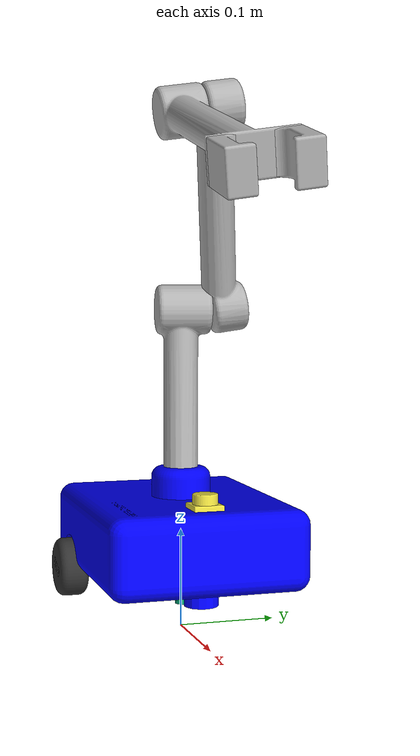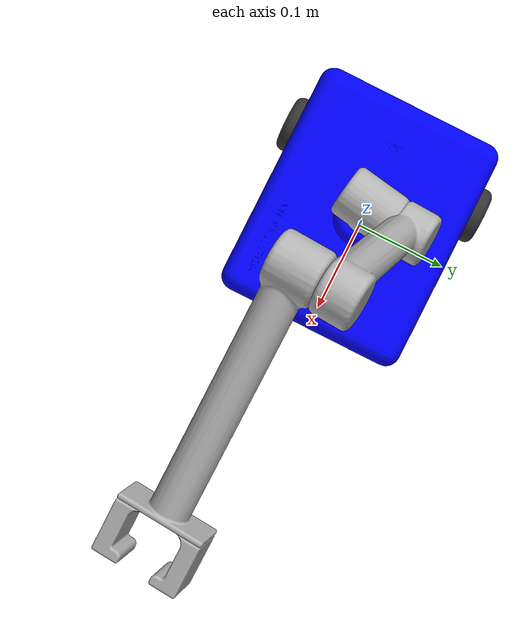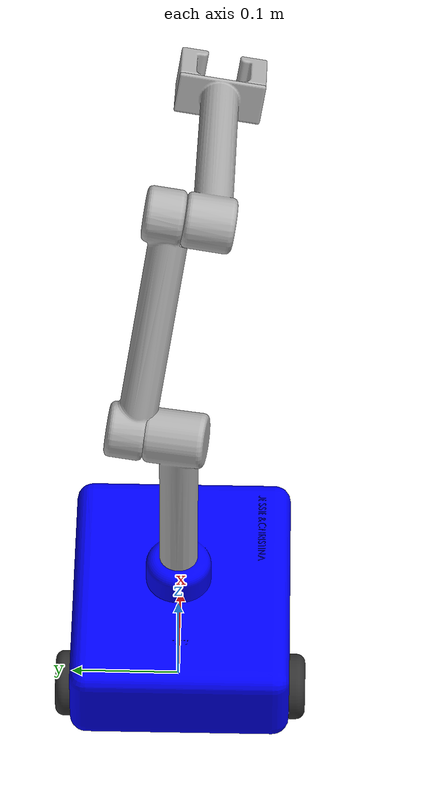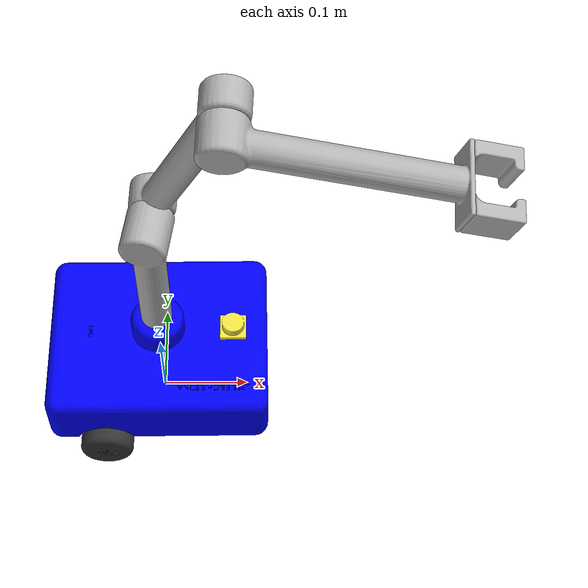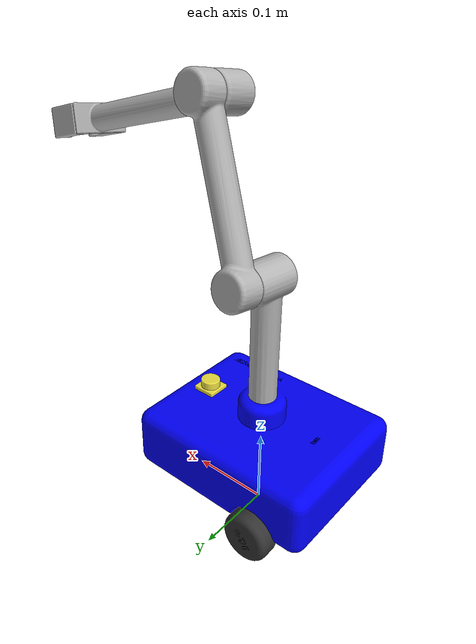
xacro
<?xml version="1.0"?>
<robot xmlns:xacro="http://www.ros.org/wiki/xacro" name="car_model">
    <xacro:arg name="initial_positions_file" default="initial_positions.yaml" />

    <!-- Import car_model urdf file -->
    <xacro:include filename="$(find car_model)/urdf/car_model.xacro" />

    <!-- Import control_xacro -->
    <xacro:include filename="car_model.ros2_control.xacro" />

    <xacro:car_model_ros2_control name="FakeSystem" initial_positions_file="$(arg initial_positions_file)"/>

</robot>

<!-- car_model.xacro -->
<robot xmlns:xacro="http://www.ros.org/wiki/xacro" name="car_model">
  <xacro:property name="pkg_name" value="car_model"/>
  <xacro:property name="path_prefix" value="file:///home/jessie/project_ws/src/${pkg_name}"/>
  <xacro:property name="shoulder_tilt" value="1.2"/>
  <xacro:property name="elbow_tilt" value="0"/>

  <!-- 惯性宏 -->
  <xacro:macro name="box_inertial" params="mass x y z">
    <inertial>
      <mass value="${mass}" />
      <inertia ixx="0.001" ixy="0.0" ixz="0.0" iyy="0.001" iyz="0.0" izz="0.001" />
    </inertial>
  </xacro:macro>

  <!-- 基础底座 -->
  <link name="base_footprint"/>
  <joint name="base_joint" type="fixed">
    <parent link="base_footprint"/>
    <child link="base_link"/>
    <origin xyz="0 0 0.135" rpy="0 0 3.14159"/>
  </joint>

  <link name="base_link">
    <inertial>
      <origin xyz="0 0 -0.05" rpy="0 0 0" />
      <mass value="100.0" />
      <inertia ixx="0.1" ixy="0.0" ixz="0.0" iyy="0.1" iyz="0.0" izz="0.01" />
    </inertial>
    <visual>
      <origin xyz="0 0 0" rpy="0 0 0" />
      <geometry><mesh filename="${path_prefix}/meshes/base_link.STL" /></geometry>
      <material name=""><color rgba="0 0 1 1" /></material>
    </visual>
    <collision>
      <origin xyz="0 0 0.05" rpy="0 0 0" />
      <geometry><box size="0.25 0.2 0.1" /></geometry>
    </collision>
    <!-- 支撑轮摩擦力设为0 -->
    <collision name="left_front_caster">
      <origin xyz="0.18 0.12 -0.08" rpy="0 0 0" />
      <geometry><sphere radius="0.038" /></geometry>
      <surface><friction><ode><mu>0.0</mu><mu2>0.0</mu2></ode></friction></surface>
    </collision>
    <collision name="right_front_caster">
      <origin xyz="0.18 -0.12 -0.08" rpy="0 0 0" />
      <geometry><sphere radius="0.038" /></geometry>
      <surface><friction><ode><mu>0.0</mu><mu2>0.0</mu2></ode></friction></surface>
    </collision>
    <collision name="left_rear_caster">
      <origin xyz="-0.18 0.12 -0.08" rpy="0 0 0" />
      <geometry><sphere radius="0.04" /></geometry>
      <surface><friction><ode><mu>0.0</mu><mu2>0.0</mu2></ode></friction></surface>
    </collision>
    <collision name="right_rear_caster">
      <origin xyz="-0.18 -0.12 -0.08" rpy="0 0 0" />
      <geometry><sphere radius="0.04" /></geometry>
      <surface><friction><ode><mu>0.0</mu><mu2>0.0</mu2></ode></friction></surface>
    </collision>
  </link>

  <!-- 机械臂关节 1 -->
  <link name="link1">
    <xacro:box_inertial mass="0.01" x="0.05" y="0.05" z="0.05" />
    <visual><geometry><mesh filename="${path_prefix}/meshes/link1.STL" /></geometry><material name=""><color rgba="0.7 0.7 0.7 1" /></material></visual>
    <collision><geometry><mesh filename="${path_prefix}/meshes/link1.STL" /></geometry></collision>
  </link>
  <joint name="joint1" type="revolute">
    <origin xyz="0 0 0.03" rpy="0 0 0" />
    <parent link="base_link" />
    <child link="link1" />
    <axis xyz="0 0 -1" />
    <limit lower="-3.14" upper="3.14" effort="10.0" velocity="1.0" />
    <dynamics damping="1.0" friction="1.0"/>
  </joint>

  <!-- 机械臂关节 2 -->
  <link name="link2">
    <xacro:box_inertial mass="0.01" x="0.05" y="0.05" z="0.05" />
    <visual><geometry><mesh filename="${path_prefix}/meshes/link2.STL" /></geometry><material name=""><color rgba="0.7 0.7 0.7 1" /></material></visual>
    <collision><geometry><mesh filename="${path_prefix}/meshes/link2.STL" /></geometry></collision>
  </link>
  <joint name="joint2" type="revolute">
    <origin xyz="-0.0046 -0.0296 0.16" rpy="1.5708 ${shoulder_tilt} 0" />
    <parent link="link1" />
    <child link="link2" />
    <axis xyz="0.1537 0 -0.9881" />
    <limit lower="-3.14" upper="3.14" effort="10.0" velocity="1.0" />
    <dynamics damping="1.0" friction="1.0"/>
  </joint>

  <!-- 机械臂关节 3 -->
  <link name="link3">
    <xacro:box_inertial mass="0.01" x="0.05" y="0.05" z="0.05" />
    <visual><geometry><mesh filename="${path_prefix}/meshes/link3.STL" /></geometry><material name=""><color rgba="0.7 0.7 0.7 1" /></material></visual>
    <collision><geometry><mesh filename="${path_prefix}/meshes/link3.STL" /></geometry></collision>
  </link>
  <joint name="joint3" type="revolute">
    <origin xyz="-0.2074 -0.0052 -0.0322" rpy="0 ${elbow_tilt} 0" />
    <parent link="link2" />
    <child link="link3" />
    <axis xyz="-0.1537 0 0.9881" />
    <limit lower="-3.14" upper="3.14" effort="10.0" velocity="1.0" />
    <dynamics damping="1.0" friction="1.0"/>
  </joint>

  <!-- 吸盘物理连接点 grasp_link -->
  <link name="grasp_link">
    <inertial>
      <mass value="0.05" />
      <inertia ixx="0.0001" ixy="0" ixz="0" iyy="0.0001" iyz="0" izz="0.0001" />
    </inertial>
    <collision><geometry><sphere radius="0.0001"/></geometry></collision>
  </link>

  <joint name="grasp_joint" type="fixed">
    <parent link="link3" />
    <child link="grasp_link" />
    <origin xyz="-0.02 -0.25 -0.03" rpy="0 0 0" />
  </joint>

  <!-- 防止 grasp_link 在 Gazebo 中被优化掉（关键修复） -->
  <gazebo reference="grasp_joint">
    <disableFixedJointLumping>true</disableFixedJointLumping>
  </gazebo>

  <!-- 夹爪 paw1 -->
  <link name="paw1">
    <xacro:box_inertial mass="0.01" x="0.05" y="0.05" z="0.05" />
    <visual><geometry><mesh filename="${path_prefix}/meshes/paw1.STL" /></geometry><material name=""><color rgba="0.7 0.7 0.7 1" /></material></visual>
    <collision>
      <origin xyz="0 0 0" rpy="0 0 0"/>
      <geometry><box size="0.18 0.15 0.057"/></geometry>
      <surface>
        <friction><ode><mu>100.0</mu><mu2>100.0</mu2></ode></friction>
        <contact><ode><kp>1000000.0</kp><kd>1.0</kd><min_depth>0.001</min_depth></ode></contact>
      </surface>
    </collision>
  </link>
  <joint name="paw1_joint" type="prismatic">
    <origin xyz="-0.0147 -0.2336 -0.0680" rpy="0 0 0" />
    <parent link="link3" />
    <child link="paw1" />
    <axis xyz="-0.1537 0 0.9881" />
    <limit lower="-0.040" upper="0.040" effort="50" velocity="0.1" />
    <dynamics damping="10.0" friction="5.0"/>
  </joint>

  <!-- 夹爪 paw2 -->
  <link name="paw2">
    <xacro:box_inertial mass="0.01" x="0.05" y="0.05" z="0.05" />
    <visual><geometry><mesh filename="${path_prefix}/meshes/paw2.STL" /></geometry><material name=""><color rgba="0.7 0.7 0.7 1" /></material></visual>
    <collision>
    <origin xyz="0 0 0" rpy="0 0 0"/>
      <geometry><box size="0.18 0.15 0.057"/></geometry>
      <surface>
        <friction><ode><mu>100.0</mu><mu2>100.0</mu2></ode></friction>
        <contact><ode><kp>1000000.0</kp><kd>1.0</kd><min_depth>0.001</min_depth></ode></contact>
      </surface>
    </collision>
  </link>
  <joint name="paw2_joint" type="prismatic">
    <origin xyz="-0.0270 -0.2336 0.0109" rpy="3.1416 0 0" />
    <parent link="link3" />
    <child link="paw2" />
    <axis xyz="-0.1537 0 -0.9881" />
    <limit lower="-0.040" upper="0.040" effort="50" velocity="0.1" />
    <dynamics damping="10.0" friction="5.0"/>
  </joint>

  <!-- 轮子部分 -->
  <link name="wheel1">
    <inertial><origin xyz="0 0 0" rpy="0 0 0" /><mass value="0.5" /><inertia ixx="0.001" ixy="0" ixz="0" iyy="0.001" iyz="0" izz="0.001" /></inertial>
    <visual><geometry><mesh filename="${path_prefix}/meshes/wheel1.STL" /></geometry><material name=""><color rgba="0.2 0.2 0.2 1" /></material></visual>
    <collision><origin xyz="0 0 0" rpy="0 0 0" /><geometry><cylinder radius="0.04" length="0.02"/></geometry></collision>
  </link>
  <joint name="wheel1_joint" type="continuous">
    <origin xyz="0.060547 -0.11215 -0.08" rpy="1.5708 0 -3.1416" /><parent link="base_link" /><child link="wheel1" /><axis xyz="0 0 -1" />
  </joint>
  <link name="wheel2">
    <inertial><origin xyz="0 0 0" rpy="0 0 0" /><mass value="0.5" /><inertia ixx="0.001" ixy="0" ixz="0" iyy="0.001" iyz="0" izz="0.001" /></inertial>
    <visual><geometry><mesh filename="${path_prefix}/meshes/wheel2.STL" /></geometry><material name=""><color rgba="0.2 0.2 0.2 1" /></material></visual>
    <collision><origin xyz="0 0 0" rpy="0 0 0" /><geometry><cylinder radius="0.04" length="0.02"/></geometry></collision>
  </link>
  <joint name="wheel2_joint" type="continuous">
    <origin xyz="0.060547 0.11785 -0.08" rpy="1.5708 0 0" /><parent link="base_link" /><child link="wheel2" /><axis xyz="0 0 1" />
  </joint>

  <!-- 传感器 -->
  <link name="camera"><xacro:box_inertial mass="0.01" x="0.05" y="0.05" z="0.05" /><visual><geometry><mesh filename="${path_prefix}/meshes/camera.STL" /></geometry></visual><collision><geometry><mesh filename="${path_prefix}/meshes/camera.STL" /></geometry></collision></link>
  <joint name="camera_joint" type="fixed"><origin xyz="-0.10 0.012 -0.10" rpy="0 0 3.14159" /><parent link="base_link" /><child link="camera" /></joint>
  <link name="radar"><xacro:box_inertial mass="0.01" x="0.05" y="0.05" z="0.05" /><visual><geometry><mesh filename="${path_prefix}/meshes/radar.STL" /></geometry></visual><collision><geometry><mesh filename="${path_prefix}/meshes/radar.STL" /></geometry></collision></link>
  <joint name="radar_joint" type="fixed"><origin xyz="0 0 0" rpy="0 0 0" /><parent link="base_link" /><child link="radar" /></joint>

  <!-- 控制器配置 -->
  <ros2_control name="GazeboSystem" type="system">
    <hardware><plugin>gazebo_ros2_control/GazeboSystem</plugin></hardware>
    <joint name="joint1"><command_interface name="position"/><state_interface name="position"/><state_interface name="velocity"/></joint>
    <joint name="joint2"><command_interface name="position"/><state_interface name="position"/><state_interface name="velocity"/></joint>
    <joint name="joint3"><command_interface name="position"/><state_interface name="position"/><state_interface name="velocity"/></joint>
    <joint name="paw1_joint"><command_interface name="position"/><state_interface name="position"/><state_interface name="velocity"/></joint>
    <joint name="paw2_joint"><command_interface name="position"/><state_interface name="position"/><state_interface name="velocity"/></joint>
    <joint name="wheel1_joint"><state_interface name="position"/><state_interface name="velocity"/></joint>
    <joint name="wheel2_joint"><state_interface name="position"/><state_interface name="velocity"/></joint>
  </ros2_control>

  <gazebo>
    <plugin filename="libgazebo_ros2_control.so" name="gazebo_ros2_control">
      <parameters>$(find car_model)/config/controllers.yaml</parameters>
    </plugin>
  </gazebo>

  <gazebo>
    <plugin name="diff_drive" filename="libgazebo_ros_diff_drive.so">
      <ros><namespace>/</namespace></ros>
      <left_joint>wheel1_joint</left_joint><right_joint>wheel2_joint</right_joint>
      <wheel_separation>0.23</wheel_separation><wheel_diameter>0.08</wheel_diameter>
      <max_wheel_torque>600</max_wheel_torque><max_wheel_acceleration>8.0</max_wheel_acceleration>
      <publish_odom>true</publish_odom><publish_odom_tf>true</publish_odom_tf>
      <odometry_frame>odom</odometry_frame><robot_base_frame>base_footprint</robot_base_frame>
    </plugin>
  </gazebo>

  <gazebo reference="radar">
    <sensor name="lidar" type="ray">
      <always_on>true</always_on><visualize>true</visualize><update_rate>10</update_rate>
      <ray>
        <scan><horizontal><samples>360</samples><resolution>1</resolution><min_angle>-3.14</min_angle><max_angle>3.14</max_angle></horizontal></scan>
        <range><min>0.3</min><max>10.0</max><resolution>0.015</resolution></range>
      </ray>
      <plugin name="scan" filename="libgazebo_ros_ray_sensor.so">
        <ros><remapping>~/out:=scan</remapping></ros>
        <output_type>sensor_msgs/LaserScan</output_type>
        <frame_name>radar</frame_name>
      </plugin>
    </sensor>
  </gazebo>

  <gazebo reference="camera">
    <sensor type="camera" name="camera_sensor">
      <update_rate>30.0</update_rate><always_on>true</always_on><visualize>true</visualize>
      <camera name="head">
        <horizontal_fov>1.3962634</horizontal_fov>
        <image><width>640</width><height>480</height><format>R8G8B8</format></image>
        <clip><near>0.02</near><far>300</far></clip>
      </camera>
      <plugin name="camera_controller" filename="libgazebo_ros_camera.so">
        <cameraName>camera</cameraName><frameName>camera</frameName>
      </plugin>
    </sensor>
  </gazebo>

  <!-- 真空吸盘插件配置 -->
  <gazebo>
    <plugin name="vacuum_gripper" filename="libgazebo_ros_vacuum_gripper.so">
      <ros>
        <namespace>/gripper</namespace>
      </ros>
      <link_name>grasp_link</link_name>
      <max_distance>0.15</max_distance>
      <max_force>10000</max_force>
      <fixed>true</fixed>
    </plugin>
  </gazebo>
  <gazebo reference="paw1">
  <turnGravityOff>true</turnGravityOff>
  <material>Gazebo/Grey</material>
</gazebo>

<gazebo reference="paw2">
  <turnGravityOff>true</turnGravityOff>
  <material>Gazebo/Grey</material>
</gazebo>
  <gazebo reference="link1"><turnGravityOff>true</turnGravityOff><material>Gazebo/Grey</material></gazebo>
  <gazebo reference="link2"><turnGravityOff>true</turnGravityOff><material>Gazebo/Grey</material></gazebo>
  <gazebo reference="link3"><turnGravityOff>true</turnGravityOff><material>Gazebo/Grey</material></gazebo>
  <gazebo reference="paw1"><turnGravityOff>true</turnGravityOff><material>Gazebo/Grey</material></gazebo>
  <gazebo reference="paw2"><turnGravityOff>true</turnGravityOff><material>Gazebo/Grey</material></gazebo>
  <gazebo reference="base_link"><material>Gazebo/Blue</material></gazebo>
  <gazebo reference="wheel1"><material>Gazebo/Black</material></gazebo>
  <gazebo reference="wheel2"><material>Gazebo/Black</material></gazebo>
  <gazebo reference="grasp_link"><material>Gazebo/Red</material></gazebo>
</robot>
